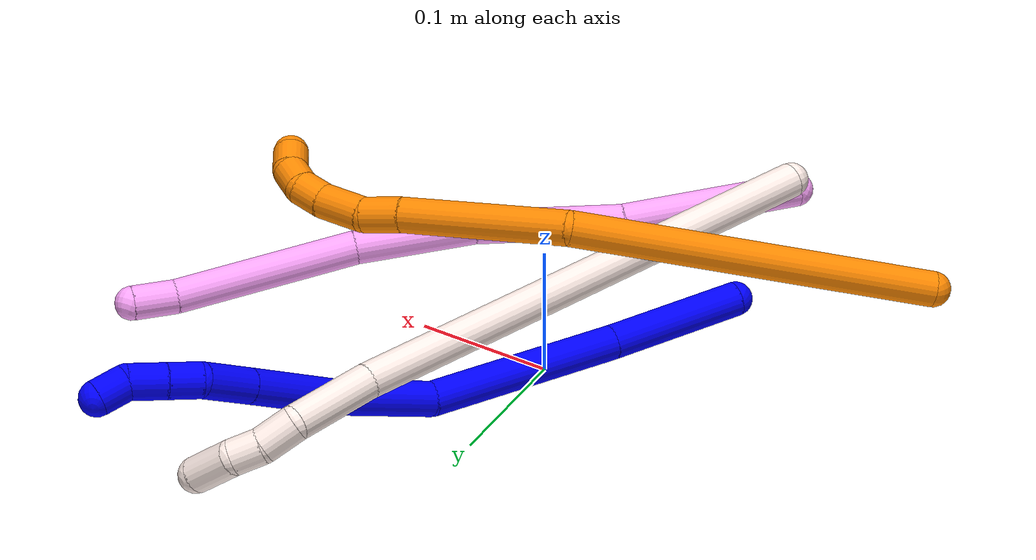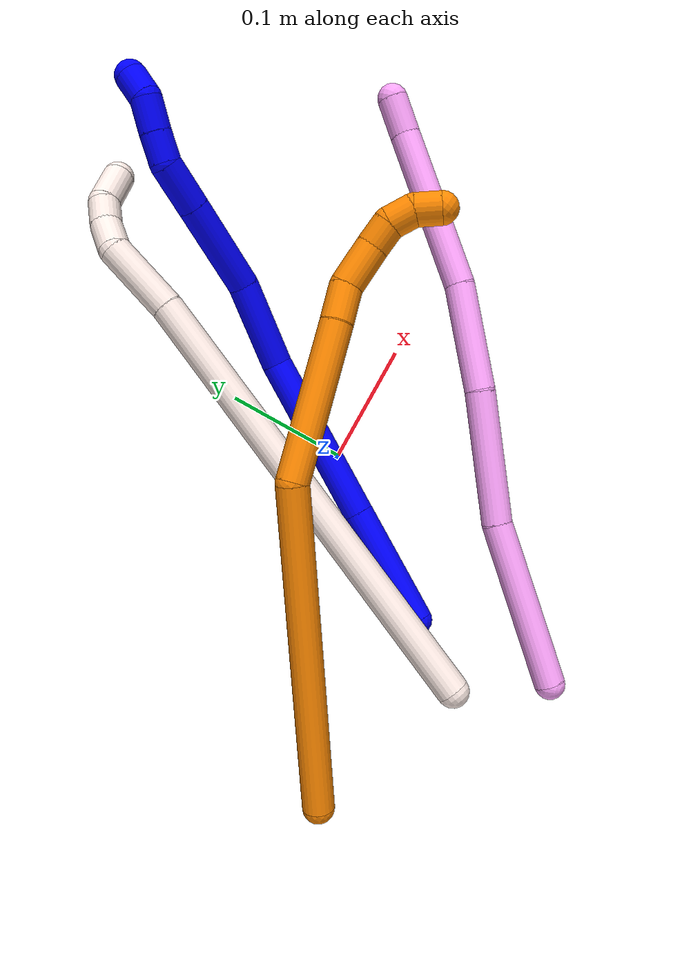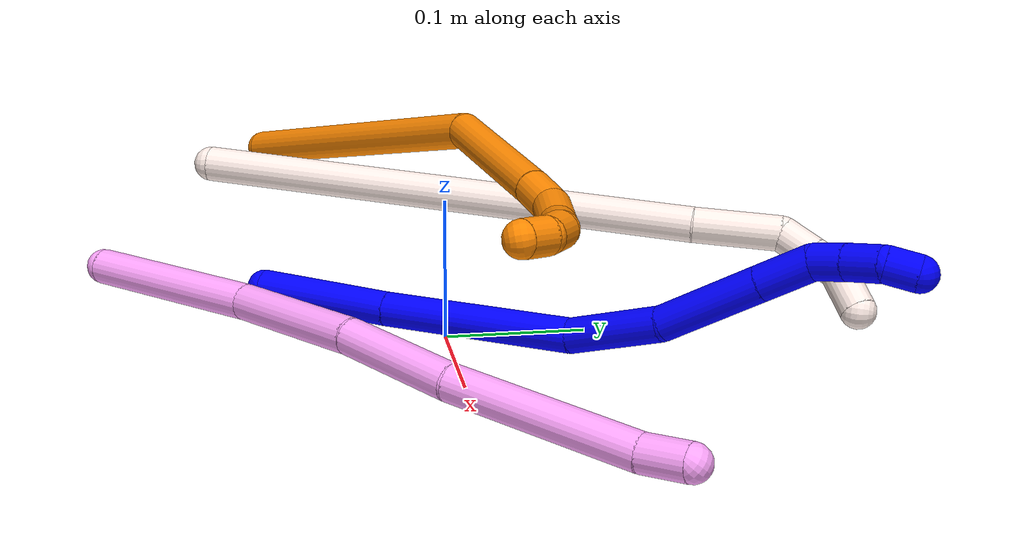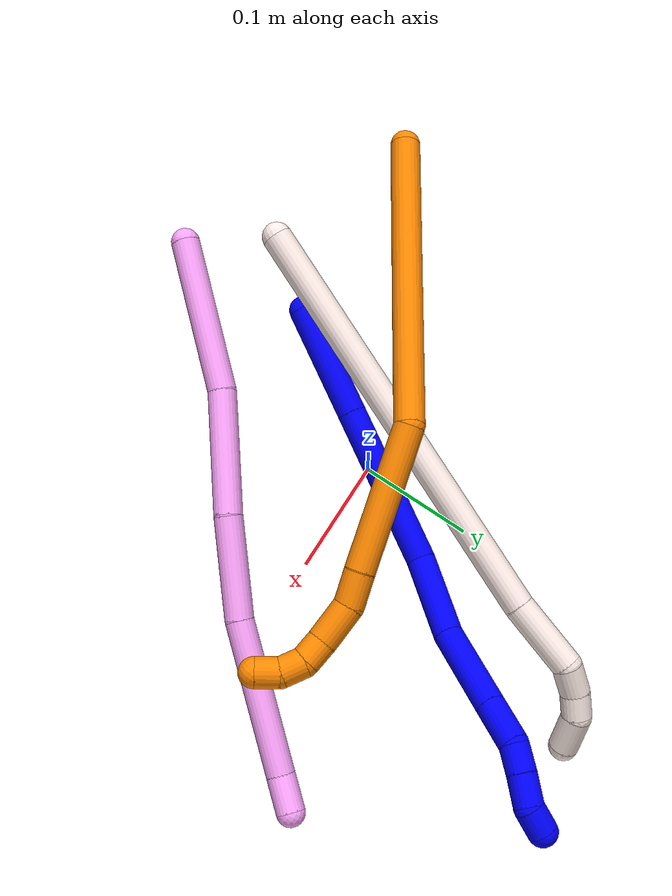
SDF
<sdf version="1.7">
 <world name="default">
  <model name="1">
   <static>0</static>
   <link name="1">
    <collision name="collision-cylinder-e_1_1_4">
     <pose>0.021833 0.036547 0.027768 -0.921055 0.444003 -0.223035</pose>
     <geometry><cylinder><radius>0.0125</radius><length>0.101655</length></cylinder></geometry>
     <surface>
      <friction><ode><mu>1.16</mu><mu2>1.16</mu2><slip1>0</slip1><slip2>0</slip2></ode></friction>
      <contact><ode><kp>1e+06</kp><kd>1</kd><max_vel>0</max_vel><min_depth>0.001</min_depth></ode></contact>
     </surface>
    </collision>
    <visual name="visual-cylinder-e_1_1_4">
     <pose>0.021833 0.036547 0.027768 -0.921055 0.444003 -0.223035</pose>
     <geometry><cylinder><radius>0.0125</radius><length>0.101655</length></cylinder></geometry>
     <material><ambient>0 0 1 1</ambient></material>
    </visual>
    <collision name="collision-cylinder-e_2_4_5">
     <pose>0.076537 0.122776 0.094246 -0.9089 0.481014 -0.238503</pose>
     <geometry><cylinder><radius>0.0125</radius><length>0.142087</length></cylinder></geometry>
     <surface>
      <friction><ode><mu>1.16</mu><mu2>1.16</mu2><slip1>0</slip1><slip2>0</slip2></ode></friction>
      <contact><ode><kp>1e+06</kp><kd>1</kd><max_vel>0</max_vel><min_depth>0.001</min_depth></ode></contact>
     </surface>
    </collision>
    <visual name="visual-cylinder-e_2_4_5">
     <pose>0.076537 0.122776 0.094246 -0.9089 0.481014 -0.238503</pose>
     <geometry><cylinder><radius>0.0125</radius><length>0.142087</length></cylinder></geometry>
     <material><ambient>0 0 1 1</ambient></material>
    </visual>
    <collision name="collision-cylinder-e_3_5_6">
     <pose>0.134853 0.191825 0.148692 -0.888471 0.795141 -0.394547</pose>
     <geometry><cylinder><radius>0.0125</radius><length>0.071282</length></cylinder></geometry>
     <surface>
      <friction><ode><mu>1.16</mu><mu2>1.16</mu2><slip1>0</slip1><slip2>0</slip2></ode></friction>
      <contact><ode><kp>1e+06</kp><kd>1</kd><max_vel>0</max_vel><min_depth>0.001</min_depth></ode></contact>
     </surface>
    </collision>
    <visual name="visual-cylinder-e_3_5_6">
     <pose>0.134853 0.191825 0.148692 -0.888471 0.795141 -0.394547</pose>
     <geometry><cylinder><radius>0.0125</radius><length>0.071282</length></cylinder></geometry>
     <material><ambient>0 0 1 1</ambient></material>
    </visual>
    <collision name="collision-cylinder-e_4_6_7">
     <pose>0.189302 0.222816 0.18464 -0.521886 0.893677 -0.25452</pose>
     <geometry><cylinder><radius>0.0125</radius><length>0.074423</length></cylinder></geometry>
     <surface>
      <friction><ode><mu>1.16</mu><mu2>1.16</mu2><slip1>0</slip1><slip2>0</slip2></ode></friction>
      <contact><ode><kp>1e+06</kp><kd>1</kd><max_vel>0</max_vel><min_depth>0.001</min_depth></ode></contact>
     </surface>
    </collision>
    <visual name="visual-cylinder-e_4_6_7">
     <pose>0.189302 0.222816 0.18464 -0.521886 0.893677 -0.25452</pose>
     <geometry><cylinder><radius>0.0125</radius><length>0.074423</length></cylinder></geometry>
     <material><ambient>0 0 1 1</ambient></material>
    </visual>
    <collision name="collision-cylinder-e_5_7_8">
     <pose>0.23322 0.240443 0.215343 -0.519753 0.889746 -0.252179</pose>
     <geometry><cylinder><radius>0.0125</radius><length>0.0384</length></cylinder></geometry>
     <surface>
      <friction><ode><mu>1.16</mu><mu2>1.16</mu2><slip1>0</slip1><slip2>0</slip2></ode></friction>
      <contact><ode><kp>1e+06</kp><kd>1</kd><max_vel>0</max_vel><min_depth>0.001</min_depth></ode></contact>
     </surface>
    </collision>
    <visual name="visual-cylinder-e_5_7_8">
     <pose>0.23322 0.240443 0.215343 -0.519753 0.889746 -0.252179</pose>
     <geometry><cylinder><radius>0.0125</radius><length>0.0384</length></cylinder></geometry>
     <material><ambient>0 0 1 1</ambient></material>
    </visual>
    <collision name="collision-cylinder-e_6_8_9">
     <pose>0.255862 0.254242 0.230157 -1.06464 0.714154 -0.432625</pose>
     <geometry><cylinder><radius>0.0125</radius><length>0.023589</length></cylinder></geometry>
     <surface>
      <friction><ode><mu>1.16</mu><mu2>1.16</mu2><slip1>0</slip1><slip2>0</slip2></ode></friction>
      <contact><ode><kp>1e+06</kp><kd>1</kd><max_vel>0</max_vel><min_depth>0.001</min_depth></ode></contact>
     </surface>
    </collision>
    <visual name="visual-cylinder-e_6_8_9">
     <pose>0.255862 0.254242 0.230157 -1.06464 0.714154 -0.432625</pose>
     <geometry><cylinder><radius>0.0125</radius><length>0.023589</length></cylinder></geometry>
     <material><ambient>0 0 1 1</ambient></material>
    </visual>
    <collision name="collision-cylinder-e_7_9_10">
     <pose>0.272051 0.271192 0.238783 -1.13126 0.696647 -0.45313</pose>
     <geometry><cylinder><radius>0.0125</radius><length>0.026381</length></cylinder></geometry>
     <surface>
      <friction><ode><mu>1.16</mu><mu2>1.16</mu2><slip1>0</slip1><slip2>0</slip2></ode></friction>
      <contact><ode><kp>1e+06</kp><kd>1</kd><max_vel>0</max_vel><min_depth>0.001</min_depth></ode></contact>
     </surface>
    </collision>
    <visual name="visual-cylinder-e_7_9_10">
     <pose>0.272051 0.271192 0.238783 -1.13126 0.696647 -0.45313</pose>
     <geometry><cylinder><radius>0.0125</radius><length>0.026381</length></cylinder></geometry>
     <material><ambient>0 0 1 1</ambient></material>
    </visual>
    <collision name="collision-cylinder-e_8_10_2">
     <pose>0.283469 0.288699 0.249762 -0.896557 0.269637 -0.130284</pose>
     <geometry><cylinder><radius>0.0125</radius><length>0.022183</length></cylinder></geometry>
     <surface>
      <friction><ode><mu>1.16</mu><mu2>1.16</mu2><slip1>0</slip1><slip2>0</slip2></ode></friction>
      <contact><ode><kp>1e+06</kp><kd>1</kd><max_vel>0</max_vel><min_depth>0.001</min_depth></ode></contact>
     </surface>
    </collision>
    <visual name="visual-cylinder-e_8_10_2">
     <pose>0.283469 0.288699 0.249762 -0.896557 0.269637 -0.130284</pose>
     <geometry><cylinder><radius>0.0125</radius><length>0.022183</length></cylinder></geometry>
     <material><ambient>0 0 1 1</ambient></material>
    </visual>
    <collision name="collision-sphere-2">
     <pose>0.286424 0.297051 0.256436 0 -0 0</pose>
     <geometry><sphere><radius>0.0125</radius></sphere></geometry>
     <surface>
      <friction><ode><mu>1.16</mu><mu2>1.16</mu2><slip1>0</slip1><slip2>0</slip2></ode></friction>
      <contact><ode><kp>1e+06</kp><kd>1</kd><max_vel>0</max_vel><min_depth>0.001</min_depth></ode></contact>
     </surface>
    </collision>
    <visual name="visual-sphere-2">
     <pose>0.286424 0.297051 0.256436 0 -0 0</pose>
     <geometry><sphere><radius>0.0125</radius></sphere></geometry>
     <material><ambient>0 0 1 1</ambient></material>
    </visual>
    <collision name="collision-sphere-10">
     <pose>0.280515 0.280348 0.243088 0 -0 0</pose>
     <geometry><sphere><radius>0.0125</radius></sphere></geometry>
     <surface>
      <friction><ode><mu>1.16</mu><mu2>1.16</mu2><slip1>0</slip1><slip2>0</slip2></ode></friction>
      <contact><ode><kp>1e+06</kp><kd>1</kd><max_vel>0</max_vel><min_depth>0.001</min_depth></ode></contact>
     </surface>
    </collision>
    <visual name="visual-sphere-10">
     <pose>0.280515 0.280348 0.243088 0 -0 0</pose>
     <geometry><sphere><radius>0.0125</radius></sphere></geometry>
     <material><ambient>0 0 1 1</ambient></material>
    </visual>
    <collision name="collision-sphere-9">
     <pose>0.263587 0.262037 0.234478 0 -0 0</pose>
     <geometry><sphere><radius>0.0125</radius></sphere></geometry>
     <surface>
      <friction><ode><mu>1.16</mu><mu2>1.16</mu2><slip1>0</slip1><slip2>0</slip2></ode></friction>
      <contact><ode><kp>1e+06</kp><kd>1</kd><max_vel>0</max_vel><min_depth>0.001</min_depth></ode></contact>
     </surface>
    </collision>
    <visual name="visual-sphere-9">
     <pose>0.263587 0.262037 0.234478 0 -0 0</pose>
     <geometry><sphere><radius>0.0125</radius></sphere></geometry>
     <material><ambient>0 0 1 1</ambient></material>
    </visual>
    <collision name="collision-sphere-4">
     <pose>0.043667 0.073094 0.055536 0 -0 0</pose>
     <geometry><sphere><radius>0.0125</radius></sphere></geometry>
     <surface>
      <friction><ode><mu>1.16</mu><mu2>1.16</mu2><slip1>0</slip1><slip2>0</slip2></ode></friction>
      <contact><ode><kp>1e+06</kp><kd>1</kd><max_vel>0</max_vel><min_depth>0.001</min_depth></ode></contact>
     </surface>
    </collision>
    <visual name="visual-sphere-4">
     <pose>0.043667 0.073094 0.055536 0 -0 0</pose>
     <geometry><sphere><radius>0.0125</radius></sphere></geometry>
     <material><ambient>0 0 1 1</ambient></material>
    </visual>
    <collision name="collision-sphere-1">
     <geometry><sphere><radius>0.0125</radius></sphere></geometry>
     <surface>
      <friction><ode><mu>1.16</mu><mu2>1.16</mu2><slip1>0</slip1><slip2>0</slip2></ode></friction>
      <contact><ode><kp>1e+06</kp><kd>1</kd><max_vel>0</max_vel><min_depth>0.001</min_depth></ode></contact>
     </surface>
    </collision>
    <visual name="visual-sphere-1">
     <geometry><sphere><radius>0.0125</radius></sphere></geometry>
     <material><ambient>0 0 1 1</ambient></material>
    </visual>
    <collision name="collision-sphere-8">
     <pose>0.248137 0.246447 0.225836 0 -0 0</pose>
     <geometry><sphere><radius>0.0125</radius></sphere></geometry>
     <surface>
      <friction><ode><mu>1.16</mu><mu2>1.16</mu2><slip1>0</slip1><slip2>0</slip2></ode></friction>
      <contact><ode><kp>1e+06</kp><kd>1</kd><max_vel>0</max_vel><min_depth>0.001</min_depth></ode></contact>
     </surface>
    </collision>
    <visual name="visual-sphere-8">
     <pose>0.248137 0.246447 0.225836 0 -0 0</pose>
     <geometry><sphere><radius>0.0125</radius></sphere></geometry>
     <material><ambient>0 0 1 1</ambient></material>
    </visual>
    <collision name="collision-sphere-5">
     <pose>0.109407 0.172458 0.132955 0 -0 0</pose>
     <geometry><sphere><radius>0.0125</radius></sphere></geometry>
     <surface>
      <friction><ode><mu>1.16</mu><mu2>1.16</mu2><slip1>0</slip1><slip2>0</slip2></ode></friction>
      <contact><ode><kp>1e+06</kp><kd>1</kd><max_vel>0</max_vel><min_depth>0.001</min_depth></ode></contact>
     </surface>
    </collision>
    <visual name="visual-sphere-5">
     <pose>0.109407 0.172458 0.132955 0 -0 0</pose>
     <geometry><sphere><radius>0.0125</radius></sphere></geometry>
     <material><ambient>0 0 1 1</ambient></material>
    </visual>
    <collision name="collision-sphere-6">
     <pose>0.1603 0.211193 0.164429 0 -0 0</pose>
     <geometry><sphere><radius>0.0125</radius></sphere></geometry>
     <surface>
      <friction><ode><mu>1.16</mu><mu2>1.16</mu2><slip1>0</slip1><slip2>0</slip2></ode></friction>
      <contact><ode><kp>1e+06</kp><kd>1</kd><max_vel>0</max_vel><min_depth>0.001</min_depth></ode></contact>
     </surface>
    </collision>
    <visual name="visual-sphere-6">
     <pose>0.1603 0.211193 0.164429 0 -0 0</pose>
     <geometry><sphere><radius>0.0125</radius></sphere></geometry>
     <material><ambient>0 0 1 1</ambient></material>
    </visual>
    <collision name="collision-sphere-7">
     <pose>0.218304 0.234439 0.204851 0 -0 0</pose>
     <geometry><sphere><radius>0.0125</radius></sphere></geometry>
     <surface>
      <friction><ode><mu>1.16</mu><mu2>1.16</mu2><slip1>0</slip1><slip2>0</slip2></ode></friction>
      <contact><ode><kp>1e+06</kp><kd>1</kd><max_vel>0</max_vel><min_depth>0.001</min_depth></ode></contact>
     </surface>
    </collision>
    <visual name="visual-sphere-7">
     <pose>0.218304 0.234439 0.204851 0 -0 0</pose>
     <geometry><sphere><radius>0.0125</radius></sphere></geometry>
     <material><ambient>0 0 1 1</ambient></material>
    </visual>
    <inertial>
     <pose>0.130504 0.16041 0.132185 0 -0 0</pose>
     <mass>0.5</mass>
     <inertia>
      <ixx>0.000279</ixx>
      <ixy>0</ixy>
      <ixz>0</ixz>
      <iyy>0.000235</iyy>
      <iyz>0</iyz>
      <izz>-0.000466</izz>
     </inertia>
    </inertial>
   </link>
   <pose>-0.086463 -0.124694 0.015391 -1.50458 -0.960667 0.38157</pose>
  </model>
  <model name="4">
   <static>0</static>
   <link name="4">
    <collision name="collision-cylinder-e_1_1_4">
     <pose>0.034432 0.047209 0.034945 -0.933577 0.530232 -0.271954</pose>
     <geometry><cylinder><radius>0.0125</radius><length>0.136168</length></cylinder></geometry>
     <surface>
      <friction><ode><mu>1.16</mu><mu2>1.16</mu2><slip1>0</slip1><slip2>0</slip2></ode></friction>
      <contact><ode><kp>1e+06</kp><kd>1</kd><max_vel>0</max_vel><min_depth>0.001</min_depth></ode></contact>
     </surface>
    </collision>
    <visual name="visual-cylinder-e_1_1_4">
     <pose>0.034432 0.047209 0.034945 -0.933577 0.530232 -0.271954</pose>
     <geometry><cylinder><radius>0.0125</radius><length>0.136168</length></cylinder></geometry>
     <material><ambient>1 0.65098 0.996078 1</ambient></material>
    </visual>
    <collision name="collision-cylinder-e_2_4_5">
     <pose>0.09334 0.138209 0.090203 -1.13649 0.46925 -0.302898</pose>
     <geometry><cylinder><radius>0.0125</radius><length>0.108248</length></cylinder></geometry>
     <surface>
      <friction><ode><mu>1.16</mu><mu2>1.16</mu2><slip1>0</slip1><slip2>0</slip2></ode></friction>
      <contact><ode><kp>1e+06</kp><kd>1</kd><max_vel>0</max_vel><min_depth>0.001</min_depth></ode></contact>
     </surface>
    </collision>
    <visual name="visual-cylinder-e_2_4_5">
     <pose>0.09334 0.138209 0.090203 -1.13649 0.46925 -0.302898</pose>
     <geometry><cylinder><radius>0.0125</radius><length>0.108248</length></cylinder></geometry>
     <material><ambient>1 0.65098 0.996078 1</ambient></material>
    </visual>
    <collision name="collision-cylinder-e_3_5_6">
     <pose>0.134506 0.216996 0.131769 -1.025 0.38707 -0.219655</pose>
     <geometry><cylinder><radius>0.0125</radius><length>0.088428</length></cylinder></geometry>
     <surface>
      <friction><ode><mu>1.16</mu><mu2>1.16</mu2><slip1>0</slip1><slip2>0</slip2></ode></friction>
      <contact><ode><kp>1e+06</kp><kd>1</kd><max_vel>0</max_vel><min_depth>0.001</min_depth></ode></contact>
     </surface>
    </collision>
    <visual name="visual-cylinder-e_3_5_6">
     <pose>0.134506 0.216996 0.131769 -1.025 0.38707 -0.219655</pose>
     <geometry><cylinder><radius>0.0125</radius><length>0.088428</length></cylinder></geometry>
     <material><ambient>1 0.65098 0.996078 1</ambient></material>
    </visual>
    <collision name="collision-cylinder-e_4_6_7">
     <pose>0.180331 0.298468 0.192213 -0.870263 0.446898 -0.210486</pose>
     <geometry><cylinder><radius>0.0125</radius><length>0.134832</length></cylinder></geometry>
     <surface>
      <friction><ode><mu>1.16</mu><mu2>1.16</mu2><slip1>0</slip1><slip2>0</slip2></ode></friction>
      <contact><ode><kp>1e+06</kp><kd>1</kd><max_vel>0</max_vel><min_depth>0.001</min_depth></ode></contact>
     </surface>
    </collision>
    <visual name="visual-cylinder-e_4_6_7">
     <pose>0.180331 0.298468 0.192213 -0.870263 0.446898 -0.210486</pose>
     <geometry><cylinder><radius>0.0125</radius><length>0.134832</length></cylinder></geometry>
     <material><ambient>1 0.65098 0.996078 1</ambient></material>
    </visual>
    <collision name="collision-cylinder-e_5_7_2">
     <pose>0.218534 0.355696 0.239368 -0.933142 0.595659 -0.306777</pose>
     <geometry><cylinder><radius>0.0125</radius><length>0.032324</length></cylinder></geometry>
     <surface>
      <friction><ode><mu>1.16</mu><mu2>1.16</mu2><slip1>0</slip1><slip2>0</slip2></ode></friction>
      <contact><ode><kp>1e+06</kp><kd>1</kd><max_vel>0</max_vel><min_depth>0.001</min_depth></ode></contact>
     </surface>
    </collision>
    <visual name="visual-cylinder-e_5_7_2">
     <pose>0.218534 0.355696 0.239368 -0.933142 0.595659 -0.306777</pose>
     <geometry><cylinder><radius>0.0125</radius><length>0.032324</length></cylinder></geometry>
     <material><ambient>1 0.65098 0.996078 1</ambient></material>
    </visual>
    <collision name="collision-sphere-2">
     <pose>0.227602 0.366445 0.247332 0 -0 0</pose>
     <geometry><sphere><radius>0.0125</radius></sphere></geometry>
     <surface>
      <friction><ode><mu>1.16</mu><mu2>1.16</mu2><slip1>0</slip1><slip2>0</slip2></ode></friction>
      <contact><ode><kp>1e+06</kp><kd>1</kd><max_vel>0</max_vel><min_depth>0.001</min_depth></ode></contact>
     </surface>
    </collision>
    <visual name="visual-sphere-2">
     <pose>0.227602 0.366445 0.247332 0 -0 0</pose>
     <geometry><sphere><radius>0.0125</radius></sphere></geometry>
     <material><ambient>1 0.65098 0.996078 1</ambient></material>
    </visual>
    <collision name="collision-sphere-7">
     <pose>0.209466 0.344946 0.231403 0 -0 0</pose>
     <geometry><sphere><radius>0.0125</radius></sphere></geometry>
     <surface>
      <friction><ode><mu>1.16</mu><mu2>1.16</mu2><slip1>0</slip1><slip2>0</slip2></ode></friction>
      <contact><ode><kp>1e+06</kp><kd>1</kd><max_vel>0</max_vel><min_depth>0.001</min_depth></ode></contact>
     </surface>
    </collision>
    <visual name="visual-sphere-7">
     <pose>0.209466 0.344946 0.231403 0 -0 0</pose>
     <geometry><sphere><radius>0.0125</radius></sphere></geometry>
     <material><ambient>1 0.65098 0.996078 1</ambient></material>
    </visual>
    <collision name="collision-sphere-6">
     <pose>0.151195 0.25199 0.153023 0 -0 0</pose>
     <geometry><sphere><radius>0.0125</radius></sphere></geometry>
     <surface>
      <friction><ode><mu>1.16</mu><mu2>1.16</mu2><slip1>0</slip1><slip2>0</slip2></ode></friction>
      <contact><ode><kp>1e+06</kp><kd>1</kd><max_vel>0</max_vel><min_depth>0.001</min_depth></ode></contact>
     </surface>
    </collision>
    <visual name="visual-sphere-6">
     <pose>0.151195 0.25199 0.153023 0 -0 0</pose>
     <geometry><sphere><radius>0.0125</radius></sphere></geometry>
     <material><ambient>1 0.65098 0.996078 1</ambient></material>
    </visual>
    <collision name="collision-sphere-5">
     <pose>0.117816 0.182001 0.110516 0 -0 0</pose>
     <geometry><sphere><radius>0.0125</radius></sphere></geometry>
     <surface>
      <friction><ode><mu>1.16</mu><mu2>1.16</mu2><slip1>0</slip1><slip2>0</slip2></ode></friction>
      <contact><ode><kp>1e+06</kp><kd>1</kd><max_vel>0</max_vel><min_depth>0.001</min_depth></ode></contact>
     </surface>
    </collision>
    <visual name="visual-sphere-5">
     <pose>0.117816 0.182001 0.110516 0 -0 0</pose>
     <geometry><sphere><radius>0.0125</radius></sphere></geometry>
     <material><ambient>1 0.65098 0.996078 1</ambient></material>
    </visual>
    <collision name="collision-sphere-1">
     <geometry><sphere><radius>0.0125</radius></sphere></geometry>
     <surface>
      <friction><ode><mu>1.16</mu><mu2>1.16</mu2><slip1>0</slip1><slip2>0</slip2></ode></friction>
      <contact><ode><kp>1e+06</kp><kd>1</kd><max_vel>0</max_vel><min_depth>0.001</min_depth></ode></contact>
     </surface>
    </collision>
    <visual name="visual-sphere-1">
     <geometry><sphere><radius>0.0125</radius></sphere></geometry>
     <material><ambient>1 0.65098 0.996078 1</ambient></material>
    </visual>
    <collision name="collision-sphere-4">
     <pose>0.068865 0.094417 0.069891 0 -0 0</pose>
     <geometry><sphere><radius>0.0125</radius></sphere></geometry>
     <surface>
      <friction><ode><mu>1.16</mu><mu2>1.16</mu2><slip1>0</slip1><slip2>0</slip2></ode></friction>
      <contact><ode><kp>1e+06</kp><kd>1</kd><max_vel>0</max_vel><min_depth>0.001</min_depth></ode></contact>
     </surface>
    </collision>
    <visual name="visual-sphere-4">
     <pose>0.068865 0.094417 0.069891 0 -0 0</pose>
     <geometry><sphere><radius>0.0125</radius></sphere></geometry>
     <material><ambient>1 0.65098 0.996078 1</ambient></material>
    </visual>
    <inertial>
     <pose>0.11613 0.184637 0.119657 0 -0 0</pose>
     <mass>0.5</mass>
     <inertia>
      <ixx>0.000402</ixx>
      <ixy>0</ixy>
      <ixz>0</ixz>
      <iyy>0.000286</iyy>
      <iyz>0</iyz>
      <izz>-0.000689</izz>
     </inertia>
    </inertial>
   </link>
   <pose>-0.07618 -0.239851 0.039738 -2.97706 -0.873906 1.47115</pose>
  </model>
  <model name="11">
   <static>0</static>
   <link name="11">
    <collision name="collision-cylinder-e_1_1_4">
     <pose>0.002381 -0.002148 -0.179685 3.12964 0.013251 1.67347</pose>
     <geometry><cylinder><radius>0.0125</radius><length>0.359427</length></cylinder></geometry>
     <surface>
      <friction><ode><mu>1.16</mu><mu2>1.16</mu2><slip1>0</slip1><slip2>0</slip2></ode></friction>
      <contact><ode><kp>1e+06</kp><kd>1</kd><max_vel>0</max_vel><min_depth>0.001</min_depth></ode></contact>
     </surface>
    </collision>
    <visual name="visual-cylinder-e_1_1_4">
     <pose>0.002381 -0.002148 -0.179685 3.12964 0.013251 1.67347</pose>
     <geometry><cylinder><radius>0.0125</radius><length>0.359427</length></cylinder></geometry>
     <material><ambient>1 0.933333 0.909804 1</ambient></material>
    </visual>
    <collision name="collision-cylinder-e_2_4_5">
     <pose>0.002097 -0.004344 -0.389521 3.14003 -0.088175 -3.10609</pose>
     <geometry><cylinder><radius>0.0125</radius><length>0.060538</length></cylinder></geometry>
     <surface>
      <friction><ode><mu>1.16</mu><mu2>1.16</mu2><slip1>0</slip1><slip2>0</slip2></ode></friction>
      <contact><ode><kp>1e+06</kp><kd>1</kd><max_vel>0</max_vel><min_depth>0.001</min_depth></ode></contact>
     </surface>
    </collision>
    <visual name="visual-cylinder-e_2_4_5">
     <pose>0.002097 -0.004344 -0.389521 3.14003 -0.088175 -3.10609</pose>
     <geometry><cylinder><radius>0.0125</radius><length>0.060538</length></cylinder></geometry>
     <material><ambient>1 0.933333 0.909804 1</ambient></material>
    </visual>
    <collision name="collision-cylinder-e_3_5_6">
     <pose>0.001469 -0.01011 -0.431092 2.67733 0.158173 0.646958</pose>
     <geometry><cylinder><radius>0.0125</radius><length>0.025866</length></cylinder></geometry>
     <surface>
      <friction><ode><mu>1.16</mu><mu2>1.16</mu2><slip1>0</slip1><slip2>0</slip2></ode></friction>
      <contact><ode><kp>1e+06</kp><kd>1</kd><max_vel>0</max_vel><min_depth>0.001</min_depth></ode></contact>
     </surface>
    </collision>
    <visual name="visual-cylinder-e_3_5_6">
     <pose>0.001469 -0.01011 -0.431092 2.67733 0.158173 0.646958</pose>
     <geometry><cylinder><radius>0.0125</radius><length>0.025866</length></cylinder></geometry>
     <material><ambient>1 0.933333 0.909804 1</ambient></material>
    </visual>
    <collision name="collision-cylinder-e_4_6_7">
     <pose>0.007621 -0.019702 -0.451405 2.73076 0.401271 1.54658</pose>
     <geometry><cylinder><radius>0.0125</radius><length>0.021073</length></cylinder></geometry>
     <surface>
      <friction><ode><mu>1.16</mu><mu2>1.16</mu2><slip1>0</slip1><slip2>0</slip2></ode></friction>
      <contact><ode><kp>1e+06</kp><kd>1</kd><max_vel>0</max_vel><min_depth>0.001</min_depth></ode></contact>
     </surface>
    </collision>
    <visual name="visual-cylinder-e_4_6_7">
     <pose>0.007621 -0.019702 -0.451405 2.73076 0.401271 1.54658</pose>
     <geometry><cylinder><radius>0.0125</radius><length>0.021073</length></cylinder></geometry>
     <material><ambient>1 0.933333 0.909804 1</ambient></material>
    </visual>
    <collision name="collision-cylinder-e_5_7_2">
     <pose>0.020696 -0.034609 -0.468774 2.22589 0.572074 1.07616</pose>
     <geometry><cylinder><radius>0.0125</radius><length>0.033095</length></cylinder></geometry>
     <surface>
      <friction><ode><mu>1.16</mu><mu2>1.16</mu2><slip1>0</slip1><slip2>0</slip2></ode></friction>
      <contact><ode><kp>1e+06</kp><kd>1</kd><max_vel>0</max_vel><min_depth>0.001</min_depth></ode></contact>
     </surface>
    </collision>
    <visual name="visual-cylinder-e_5_7_2">
     <pose>0.020696 -0.034609 -0.468774 2.22589 0.572074 1.07616</pose>
     <geometry><cylinder><radius>0.0125</radius><length>0.033095</length></cylinder></geometry>
     <material><ambient>1 0.933333 0.909804 1</ambient></material>
    </visual>
    <collision name="collision-sphere-2">
     <pose>0.029654 -0.045642 -0.47725 0 -0 0</pose>
     <geometry><sphere><radius>0.0125</radius></sphere></geometry>
     <surface>
      <friction><ode><mu>1.16</mu><mu2>1.16</mu2><slip1>0</slip1><slip2>0</slip2></ode></friction>
      <contact><ode><kp>1e+06</kp><kd>1</kd><max_vel>0</max_vel><min_depth>0.001</min_depth></ode></contact>
     </surface>
    </collision>
    <visual name="visual-sphere-2">
     <pose>0.029654 -0.045642 -0.47725 0 -0 0</pose>
     <geometry><sphere><radius>0.0125</radius></sphere></geometry>
     <material><ambient>1 0.933333 0.909804 1</ambient></material>
    </visual>
    <collision name="collision-sphere-7">
     <pose>0.011737 -0.023576 -0.460297 0 -0 0</pose>
     <geometry><sphere><radius>0.0125</radius></sphere></geometry>
     <surface>
      <friction><ode><mu>1.16</mu><mu2>1.16</mu2><slip1>0</slip1><slip2>0</slip2></ode></friction>
      <contact><ode><kp>1e+06</kp><kd>1</kd><max_vel>0</max_vel><min_depth>0.001</min_depth></ode></contact>
     </surface>
    </collision>
    <visual name="visual-sphere-7">
     <pose>0.011737 -0.023576 -0.460297 0 -0 0</pose>
     <geometry><sphere><radius>0.0125</radius></sphere></geometry>
     <material><ambient>1 0.933333 0.909804 1</ambient></material>
    </visual>
    <collision name="collision-sphere-6">
     <pose>0.003506 -0.015829 -0.442512 0 -0 0</pose>
     <geometry><sphere><radius>0.0125</radius></sphere></geometry>
     <surface>
      <friction><ode><mu>1.16</mu><mu2>1.16</mu2><slip1>0</slip1><slip2>0</slip2></ode></friction>
      <contact><ode><kp>1e+06</kp><kd>1</kd><max_vel>0</max_vel><min_depth>0.001</min_depth></ode></contact>
     </surface>
    </collision>
    <visual name="visual-sphere-6">
     <pose>0.003506 -0.015829 -0.442512 0 -0 0</pose>
     <geometry><sphere><radius>0.0125</radius></sphere></geometry>
     <material><ambient>1 0.933333 0.909804 1</ambient></material>
    </visual>
    <collision name="collision-sphere-5">
     <pose>-0.000568 -0.004391 -0.419673 0 -0 0</pose>
     <geometry><sphere><radius>0.0125</radius></sphere></geometry>
     <surface>
      <friction><ode><mu>1.16</mu><mu2>1.16</mu2><slip1>0</slip1><slip2>0</slip2></ode></friction>
      <contact><ode><kp>1e+06</kp><kd>1</kd><max_vel>0</max_vel><min_depth>0.001</min_depth></ode></contact>
     </surface>
    </collision>
    <visual name="visual-sphere-5">
     <pose>-0.000568 -0.004391 -0.419673 0 -0 0</pose>
     <geometry><sphere><radius>0.0125</radius></sphere></geometry>
     <material><ambient>1 0.933333 0.909804 1</ambient></material>
    </visual>
    <collision name="collision-sphere-1">
     <geometry><sphere><radius>0.0125</radius></sphere></geometry>
     <surface>
      <friction><ode><mu>1.16</mu><mu2>1.16</mu2><slip1>0</slip1><slip2>0</slip2></ode></friction>
      <contact><ode><kp>1e+06</kp><kd>1</kd><max_vel>0</max_vel><min_depth>0.001</min_depth></ode></contact>
     </surface>
    </collision>
    <visual name="visual-sphere-1">
     <geometry><sphere><radius>0.0125</radius></sphere></geometry>
     <material><ambient>1 0.933333 0.909804 1</ambient></material>
    </visual>
    <collision name="collision-sphere-4">
     <pose>0.004763 -0.004297 -0.35937 0 -0 0</pose>
     <geometry><sphere><radius>0.0125</radius></sphere></geometry>
     <surface>
      <friction><ode><mu>1.16</mu><mu2>1.16</mu2><slip1>0</slip1><slip2>0</slip2></ode></friction>
      <contact><ode><kp>1e+06</kp><kd>1</kd><max_vel>0</max_vel><min_depth>0.001</min_depth></ode></contact>
     </surface>
    </collision>
    <visual name="visual-sphere-4">
     <pose>0.004763 -0.004297 -0.35937 0 -0 0</pose>
     <geometry><sphere><radius>0.0125</radius></sphere></geometry>
     <material><ambient>1 0.933333 0.909804 1</ambient></material>
    </visual>
    <inertial>
     <pose>0.003733 -0.005715 -0.248684 0 -0 0</pose>
     <mass>0.5</mass>
     <inertia>
      <ixx>0.003455</ixx>
      <ixy>0</ixy>
      <ixz>0</ixz>
      <iyy>0.004283</iyy>
      <iyz>0</iyz>
      <izz>-3.9e-05</izz>
     </inertia>
    </inertial>
   </link>
   <pose>-0.108195 -0.160023 0.105561 1.52746 -0.129244 -0.395235</pose>
  </model>
  <model name="19">
   <static>0</static>
   <link name="19">
    <collision name="collision-cylinder-e_1_1_4">
     <pose>0.079585 0.054562 -0.084892 -2.57035 0.667778 -1.7366</pose>
     <geometry><cylinder><radius>0.0125</radius><length>0.25704</length></cylinder></geometry>
     <surface>
      <friction><ode><mu>1.16</mu><mu2>1.16</mu2><slip1>0</slip1><slip2>0</slip2></ode></friction>
      <contact><ode><kp>1e+06</kp><kd>1</kd><max_vel>0</max_vel><min_depth>0.001</min_depth></ode></contact>
     </surface>
    </collision>
    <visual name="visual-cylinder-e_1_1_4">
     <pose>0.079585 0.054562 -0.084892 -2.57035 0.667778 -1.7366</pose>
     <geometry><cylinder><radius>0.0125</radius><length>0.25704</length></cylinder></geometry>
     <material><ambient>0.996078 0.537255 0 1</ambient></material>
    </visual>
    <collision name="collision-cylinder-e_2_4_5">
     <pose>0.213116 0.124119 -0.189996 -2.50335 1.13429 -2.18453</pose>
     <geometry><cylinder><radius>0.0125</radius><length>0.119055</length></cylinder></geometry>
     <surface>
      <friction><ode><mu>1.16</mu><mu2>1.16</mu2><slip1>0</slip1><slip2>0</slip2></ode></friction>
      <contact><ode><kp>1e+06</kp><kd>1</kd><max_vel>0</max_vel><min_depth>0.001</min_depth></ode></contact>
     </surface>
    </collision>
    <visual name="visual-cylinder-e_2_4_5">
     <pose>0.213116 0.124119 -0.189996 -2.50335 1.13429 -2.18453</pose>
     <geometry><cylinder><radius>0.0125</radius><length>0.119055</length></cylinder></geometry>
     <material><ambient>0.996078 0.537255 0 1</ambient></material>
    </visual>
    <collision name="collision-cylinder-e_3_5_6">
     <pose>0.280123 0.141578 -0.21503 -2.66891 1.17777 -2.44947</pose>
     <geometry><cylinder><radius>0.0125</radius><length>0.028278</length></cylinder></geometry>
     <surface>
      <friction><ode><mu>1.16</mu><mu2>1.16</mu2><slip1>0</slip1><slip2>0</slip2></ode></friction>
      <contact><ode><kp>1e+06</kp><kd>1</kd><max_vel>0</max_vel><min_depth>0.001</min_depth></ode></contact>
     </surface>
    </collision>
    <visual name="visual-cylinder-e_3_5_6">
     <pose>0.280123 0.141578 -0.21503 -2.66891 1.17777 -2.44947</pose>
     <geometry><cylinder><radius>0.0125</radius><length>0.028278</length></cylinder></geometry>
     <material><ambient>0.996078 0.537255 0 1</ambient></material>
    </visual>
    <collision name="collision-cylinder-e_4_6_7">
     <pose>0.309208 0.150463 -0.220603 -1.68749 1.18739 -1.29804</pose>
     <geometry><cylinder><radius>0.0125</radius><length>0.034557</length></cylinder></geometry>
     <surface>
      <friction><ode><mu>1.16</mu><mu2>1.16</mu2><slip1>0</slip1><slip2>0</slip2></ode></friction>
      <contact><ode><kp>1e+06</kp><kd>1</kd><max_vel>0</max_vel><min_depth>0.001</min_depth></ode></contact>
     </surface>
    </collision>
    <visual name="visual-cylinder-e_4_6_7">
     <pose>0.309208 0.150463 -0.220603 -1.68749 1.18739 -1.29804</pose>
     <geometry><cylinder><radius>0.0125</radius><length>0.034557</length></cylinder></geometry>
     <material><ambient>0.996078 0.537255 0 1</ambient></material>
    </visual>
    <collision name="collision-cylinder-e_5_7_8">
     <pose>0.333869 0.162569 -0.221586 -1.61122 0.988202 -1.02234</pose>
     <geometry><cylinder><radius>0.0125</radius><length>0.020686</length></cylinder></geometry>
     <surface>
      <friction><ode><mu>1.16</mu><mu2>1.16</mu2><slip1>0</slip1><slip2>0</slip2></ode></friction>
      <contact><ode><kp>1e+06</kp><kd>1</kd><max_vel>0</max_vel><min_depth>0.001</min_depth></ode></contact>
     </surface>
    </collision>
    <visual name="visual-cylinder-e_5_7_8">
     <pose>0.333869 0.162569 -0.221586 -1.61122 0.988202 -1.02234</pose>
     <geometry><cylinder><radius>0.0125</radius><length>0.020686</length></cylinder></geometry>
     <material><ambient>0.996078 0.537255 0 1</ambient></material>
    </visual>
    <collision name="collision-cylinder-e_6_8_9">
     <pose>0.349984 0.1736 -0.21767 -0.911049 0.835438 -0.428198</pose>
     <geometry><cylinder><radius>0.0125</radius><length>0.020169</length></cylinder></geometry>
     <surface>
      <friction><ode><mu>1.16</mu><mu2>1.16</mu2><slip1>0</slip1><slip2>0</slip2></ode></friction>
      <contact><ode><kp>1e+06</kp><kd>1</kd><max_vel>0</max_vel><min_depth>0.001</min_depth></ode></contact>
     </surface>
    </collision>
    <visual name="visual-cylinder-e_6_8_9">
     <pose>0.349984 0.1736 -0.21767 -0.911049 0.835438 -0.428198</pose>
     <geometry><cylinder><radius>0.0125</radius><length>0.020169</length></cylinder></geometry>
     <material><ambient>0.996078 0.537255 0 1</ambient></material>
    </visual>
    <collision name="collision-cylinder-e_7_9_2">
     <pose>0.362279 0.183691 -0.206011 -0.563421 0.496709 -0.146519</pose>
     <geometry><cylinder><radius>0.0125</radius><length>0.020215</length></cylinder></geometry>
     <surface>
      <friction><ode><mu>1.16</mu><mu2>1.16</mu2><slip1>0</slip1><slip2>0</slip2></ode></friction>
      <contact><ode><kp>1e+06</kp><kd>1</kd><max_vel>0</max_vel><min_depth>0.001</min_depth></ode></contact>
     </surface>
    </collision>
    <visual name="visual-cylinder-e_7_9_2">
     <pose>0.362279 0.183691 -0.206011 -0.563421 0.496709 -0.146519</pose>
     <geometry><cylinder><radius>0.0125</radius><length>0.020215</length></cylinder></geometry>
     <material><ambient>0.996078 0.537255 0 1</ambient></material>
    </visual>
    <collision name="collision-sphere-2">
     <pose>0.367096 0.188437 -0.198498 0 -0 0</pose>
     <geometry><sphere><radius>0.0125</radius></sphere></geometry>
     <surface>
      <friction><ode><mu>1.16</mu><mu2>1.16</mu2><slip1>0</slip1><slip2>0</slip2></ode></friction>
      <contact><ode><kp>1e+06</kp><kd>1</kd><max_vel>0</max_vel><min_depth>0.001</min_depth></ode></contact>
     </surface>
    </collision>
    <visual name="visual-sphere-2">
     <pose>0.367096 0.188437 -0.198498 0 -0 0</pose>
     <geometry><sphere><radius>0.0125</radius></sphere></geometry>
     <material><ambient>0.996078 0.537255 0 1</ambient></material>
    </visual>
    <collision name="collision-sphere-9">
     <pose>0.357462 0.178945 -0.213523 0 -0 0</pose>
     <geometry><sphere><radius>0.0125</radius></sphere></geometry>
     <surface>
      <friction><ode><mu>1.16</mu><mu2>1.16</mu2><slip1>0</slip1><slip2>0</slip2></ode></friction>
      <contact><ode><kp>1e+06</kp><kd>1</kd><max_vel>0</max_vel><min_depth>0.001</min_depth></ode></contact>
     </surface>
    </collision>
    <visual name="visual-sphere-9">
     <pose>0.357462 0.178945 -0.213523 0 -0 0</pose>
     <geometry><sphere><radius>0.0125</radius></sphere></geometry>
     <material><ambient>0.996078 0.537255 0 1</ambient></material>
    </visual>
    <collision name="collision-sphere-4">
     <pose>0.15917 0.109125 -0.169783 0 -0 0</pose>
     <geometry><sphere><radius>0.0125</radius></sphere></geometry>
     <surface>
      <friction><ode><mu>1.16</mu><mu2>1.16</mu2><slip1>0</slip1><slip2>0</slip2></ode></friction>
      <contact><ode><kp>1e+06</kp><kd>1</kd><max_vel>0</max_vel><min_depth>0.001</min_depth></ode></contact>
     </surface>
    </collision>
    <visual name="visual-sphere-4">
     <pose>0.15917 0.109125 -0.169783 0 -0 0</pose>
     <geometry><sphere><radius>0.0125</radius></sphere></geometry>
     <material><ambient>0.996078 0.537255 0 1</ambient></material>
    </visual>
    <collision name="collision-sphere-1">
     <geometry><sphere><radius>0.0125</radius></sphere></geometry>
     <surface>
      <friction><ode><mu>1.16</mu><mu2>1.16</mu2><slip1>0</slip1><slip2>0</slip2></ode></friction>
      <contact><ode><kp>1e+06</kp><kd>1</kd><max_vel>0</max_vel><min_depth>0.001</min_depth></ode></contact>
     </surface>
    </collision>
    <visual name="visual-sphere-1">
     <geometry><sphere><radius>0.0125</radius></sphere></geometry>
     <material><ambient>0.996078 0.537255 0 1</ambient></material>
    </visual>
    <collision name="collision-sphere-8">
     <pose>0.342505 0.168255 -0.221816 0 -0 0</pose>
     <geometry><sphere><radius>0.0125</radius></sphere></geometry>
     <surface>
      <friction><ode><mu>1.16</mu><mu2>1.16</mu2><slip1>0</slip1><slip2>0</slip2></ode></friction>
      <contact><ode><kp>1e+06</kp><kd>1</kd><max_vel>0</max_vel><min_depth>0.001</min_depth></ode></contact>
     </surface>
    </collision>
    <visual name="visual-sphere-8">
     <pose>0.342505 0.168255 -0.221816 0 -0 0</pose>
     <geometry><sphere><radius>0.0125</radius></sphere></geometry>
     <material><ambient>0.996078 0.537255 0 1</ambient></material>
    </visual>
    <collision name="collision-sphere-5">
     <pose>0.267062 0.139113 -0.210208 0 -0 0</pose>
     <geometry><sphere><radius>0.0125</radius></sphere></geometry>
     <surface>
      <friction><ode><mu>1.16</mu><mu2>1.16</mu2><slip1>0</slip1><slip2>0</slip2></ode></friction>
      <contact><ode><kp>1e+06</kp><kd>1</kd><max_vel>0</max_vel><min_depth>0.001</min_depth></ode></contact>
     </surface>
    </collision>
    <visual name="visual-sphere-5">
     <pose>0.267062 0.139113 -0.210208 0 -0 0</pose>
     <geometry><sphere><radius>0.0125</radius></sphere></geometry>
     <material><ambient>0.996078 0.537255 0 1</ambient></material>
    </visual>
    <collision name="collision-sphere-6">
     <pose>0.293184 0.144043 -0.219851 0 -0 0</pose>
     <geometry><sphere><radius>0.0125</radius></sphere></geometry>
     <surface>
      <friction><ode><mu>1.16</mu><mu2>1.16</mu2><slip1>0</slip1><slip2>0</slip2></ode></friction>
      <contact><ode><kp>1e+06</kp><kd>1</kd><max_vel>0</max_vel><min_depth>0.001</min_depth></ode></contact>
     </surface>
    </collision>
    <visual name="visual-sphere-6">
     <pose>0.293184 0.144043 -0.219851 0 -0 0</pose>
     <geometry><sphere><radius>0.0125</radius></sphere></geometry>
     <material><ambient>0.996078 0.537255 0 1</ambient></material>
    </visual>
    <collision name="collision-sphere-7">
     <pose>0.325232 0.156883 -0.221356 0 -0 0</pose>
     <geometry><sphere><radius>0.0125</radius></sphere></geometry>
     <surface>
      <friction><ode><mu>1.16</mu><mu2>1.16</mu2><slip1>0</slip1><slip2>0</slip2></ode></friction>
      <contact><ode><kp>1e+06</kp><kd>1</kd><max_vel>0</max_vel><min_depth>0.001</min_depth></ode></contact>
     </surface>
    </collision>
    <visual name="visual-sphere-7">
     <pose>0.325232 0.156883 -0.221356 0 -0 0</pose>
     <geometry><sphere><radius>0.0125</radius></sphere></geometry>
     <material><ambient>0.996078 0.537255 0 1</ambient></material>
    </visual>
    <inertial>
     <pose>0.171449 0.097165 -0.142566 0 -0 0</pose>
     <mass>0.5</mass>
     <inertia>
      <ixx>-0.001347</ixx>
      <ixy>0</ixy>
      <ixz>0</ixz>
      <iyy>-0.000333</iyy>
      <iyz>0</iyz>
      <izz>-0.001686</izz>
     </inertia>
    </inertial>
   </link>
   <pose>-0.239214 -0.118579 0.084554 1.76167 0.440004 -0.044351</pose>
  </model>
 </world>
</sdf>
